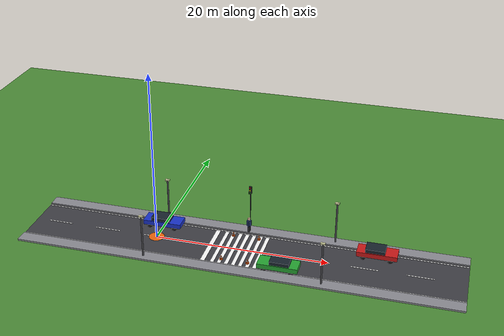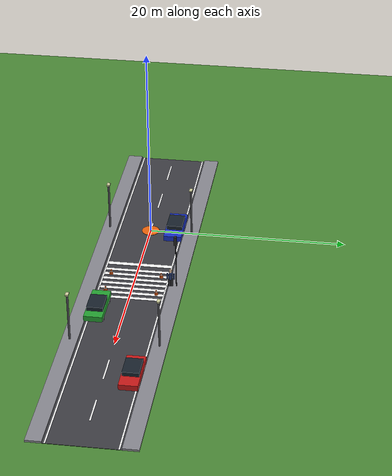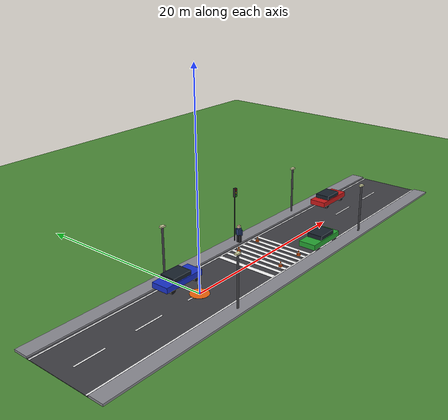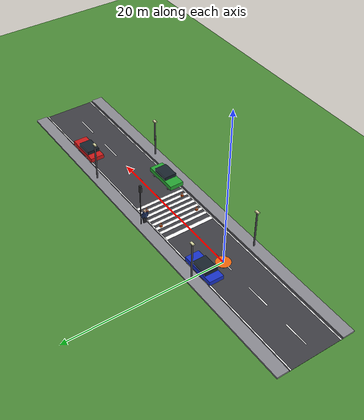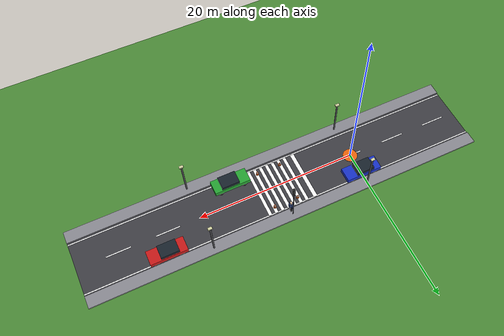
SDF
<sdf version="1.9">
 <world name="street">
  <physics name="default" type="ode">
   <max_step_size>0.004</max_step_size>
   <real_time_factor>1.0</real_time_factor>
   <real_time_update_rate>250</real_time_update_rate>
  </physics>
  <plugin name="gz::sim::systems::Physics" filename="gz-sim-physics-system"/>
  <plugin name="gz::sim::systems::UserCommands" filename="gz-sim-user-commands-system"/>
  <plugin name="gz::sim::systems::SceneBroadcaster" filename="gz-sim-scene-broadcaster-system"/>
  <plugin name="gz::sim::systems::Contact" filename="gz-sim-contact-system"/>
  <plugin name="gz::sim::systems::Sensors" filename="gz-sim-sensors-system"/>
  <plugin name="gz::sim::systems::Imu" filename="gz-sim-imu-system"/>
  <plugin name="gz::sim::systems::AirPressure" filename="gz-sim-air-pressure-system"/>
  <plugin name="gz::sim::systems::NavSat" filename="gz-sim-navsat-system"/>
  <plugin name="gz::sim::systems::Magnetometer" filename="gz-sim-magnetometer-system"/>
  <magnetic_field>6e-06 2.3e-05 -4.2e-05</magnetic_field>
  <scene>
   <ambient>0.55 0.55 0.6</ambient>
   <background>0.53 0.81 0.92</background>
   <shadows>false</shadows>
   <grid>false</grid>
  </scene>
  <light type="directional" name="sun">
   <cast_shadows>false</cast_shadows>
   <pose>0 0 10 0 0 0</pose>
   <direction>0.3 0.4 -1</direction>
   <diffuse>0.9 0.9 0.85 1</diffuse>
   <specular>0.2 0.2 0.2 1</specular>
  </light>
  <model name="ground_plane">
   <static>true</static>
   <link name="link">
    <collision name="collision">
     <geometry><plane><normal>0 0 1</normal><size>80 80</size></plane></geometry>
    </collision>
    <visual name="visual">
     <geometry><plane><normal>0 0 1</normal><size>80 80</size></plane></geometry>
     <material>
      <ambient>0.2 0.45 0.18 1</ambient>
      <diffuse>0.3 0.55 0.22 1</diffuse>
      <specular>0.05 0.05 0.05 1</specular>
     </material>
    </visual>
   </link>
  </model>
  <model name="road">
   <static>true</static>
   <pose>10 0 0.02 0 0 0</pose>
   <link name="link">
    <collision name="collision"><geometry><box><size>50 7 0.04</size></box></geometry></collision>
    <visual name="visual">
     <geometry><box><size>50 7 0.04</size></box></geometry>
     <material>
      <ambient>0.12 0.12 0.13 1</ambient>
      <diffuse>0.25 0.25 0.27 1</diffuse>
      <specular>0.05 0.05 0.05 1</specular>
     </material>
    </visual>
   </link>
  </model>
  <model name="sidewalk_right">
   <static>true</static>
   <pose>10 4.25 0.1 0 0 0</pose>
   <link name="link">
    <collision name="collision"><geometry><box><size>50 1.5 0.2</size></box></geometry></collision>
    <visual name="visual">
     <geometry><box><size>50 1.5 0.2</size></box></geometry>
     <material><ambient>0.35 0.35 0.37 1</ambient><diffuse>0.55 0.55 0.58 1</diffuse></material>
    </visual>
   </link>
  </model>
  <model name="sidewalk_left">
   <static>true</static>
   <pose>10 -4.25 0.1 0 0 0</pose>
   <link name="link">
    <collision name="collision"><geometry><box><size>50 1.5 0.2</size></box></geometry></collision>
    <visual name="visual">
     <geometry><box><size>50 1.5 0.2</size></box></geometry>
     <material><ambient>0.35 0.35 0.37 1</ambient><diffuse>0.55 0.55 0.58 1</diffuse></material>
    </visual>
   </link>
  </model>
  <model name="pad_start">
   <static>true</static>
   <pose>0 0 0.05 0 0 0</pose>
   <link name="link">
    <visual name="visual">
     <geometry><cylinder><radius>0.9</radius><length>0.02</length></cylinder></geometry>
     <material>
      <ambient>0.9 0.35 0.05 1</ambient>
      <diffuse>0.95 0.4 0.05 1</diffuse>
      <specular>0.2 0.2 0.2 1</specular>
     </material>
    </visual>
   </link>
  </model>
  <model name="road_markings">
   <static>true</static>
   <link name="link">
    <visual name="dash_m12">
     <pose>-12 0 0.043 0 0 0</pose>
     <geometry><box><size>3 0.15 0.005</size></box></geometry>
     <material><ambient>0.9 0.9 0.9 1</ambient><diffuse>1 1 1 1</diffuse></material>
    </visual>
    <visual name="dash_m6">
     <pose>-6 0 0.043 0 0 0</pose>
     <geometry><box><size>3 0.15 0.005</size></box></geometry>
     <material><ambient>0.9 0.9 0.9 1</ambient><diffuse>1 1 1 1</diffuse></material>
    </visual>
    <visual name="dash_0">
     <pose>0 0 0.043 0 0 0</pose>
     <geometry><box><size>3 0.15 0.005</size></box></geometry>
     <material><ambient>0.9 0.9 0.9 1</ambient><diffuse>1 1 1 1</diffuse></material>
    </visual>
    <visual name="dash_6">
     <pose>6 0 0.043 0 0 0</pose>
     <geometry><box><size>3 0.15 0.005</size></box></geometry>
     <material><ambient>0.9 0.9 0.9 1</ambient><diffuse>1 1 1 1</diffuse></material>
    </visual>
    <visual name="dash_12">
     <pose>12 0 0.043 0 0 0</pose>
     <geometry><box><size>3 0.15 0.005</size></box></geometry>
     <material><ambient>0.9 0.9 0.9 1</ambient><diffuse>1 1 1 1</diffuse></material>
    </visual>
    <visual name="dash_18">
     <pose>18 0 0.043 0 0 0</pose>
     <geometry><box><size>3 0.15 0.005</size></box></geometry>
     <material><ambient>0.9 0.9 0.9 1</ambient><diffuse>1 1 1 1</diffuse></material>
    </visual>
    <visual name="dash_24">
     <pose>24 0 0.043 0 0 0</pose>
     <geometry><box><size>3 0.15 0.005</size></box></geometry>
     <material><ambient>0.9 0.9 0.9 1</ambient><diffuse>1 1 1 1</diffuse></material>
    </visual>
    <visual name="dash_30">
     <pose>30 0 0.043 0 0 0</pose>
     <geometry><box><size>3 0.15 0.005</size></box></geometry>
     <material><ambient>0.9 0.9 0.9 1</ambient><diffuse>1 1 1 1</diffuse></material>
    </visual>
    <visual name="edge_right">
     <pose>10 3.25 0.043 0 0 0</pose>
     <geometry><box><size>50 0.15 0.005</size></box></geometry>
     <material><ambient>0.9 0.9 0.9 1</ambient><diffuse>1 1 1 1</diffuse></material>
    </visual>
    <visual name="edge_left">
     <pose>10 -3.25 0.043 0 0 0</pose>
     <geometry><box><size>50 0.15 0.005</size></box></geometry>
     <material><ambient>0.9 0.9 0.9 1</ambient><diffuse>1 1 1 1</diffuse></material>
    </visual>
    <visual name="zebra_1">
     <pose>7.6 0 0.043 0 0 0</pose>
     <geometry><box><size>0.4 6.5 0.005</size></box></geometry>
     <material><ambient>0.9 0.9 0.9 1</ambient><diffuse>1 1 1 1</diffuse></material>
    </visual>
    <visual name="zebra_2">
     <pose>8.4 0 0.043 0 0 0</pose>
     <geometry><box><size>0.4 6.5 0.005</size></box></geometry>
     <material><ambient>0.9 0.9 0.9 1</ambient><diffuse>1 1 1 1</diffuse></material>
    </visual>
    <visual name="zebra_3">
     <pose>9.2 0 0.043 0 0 0</pose>
     <geometry><box><size>0.4 6.5 0.005</size></box></geometry>
     <material><ambient>0.9 0.9 0.9 1</ambient><diffuse>1 1 1 1</diffuse></material>
    </visual>
    <visual name="zebra_4">
     <pose>10.0 0 0.043 0 0 0</pose>
     <geometry><box><size>0.4 6.5 0.005</size></box></geometry>
     <material><ambient>0.9 0.9 0.9 1</ambient><diffuse>1 1 1 1</diffuse></material>
    </visual>
    <visual name="zebra_5">
     <pose>10.8 0 0.043 0 0 0</pose>
     <geometry><box><size>0.4 6.5 0.005</size></box></geometry>
     <material><ambient>0.9 0.9 0.9 1</ambient><diffuse>1 1 1 1</diffuse></material>
    </visual>
    <visual name="zebra_6">
     <pose>11.6 0 0.043 0 0 0</pose>
     <geometry><box><size>0.4 6.5 0.005</size></box></geometry>
     <material><ambient>0.9 0.9 0.9 1</ambient><diffuse>1 1 1 1</diffuse></material>
    </visual>
    <visual name="zebra_7">
     <pose>12.4 0 0.043 0 0 0</pose>
     <geometry><box><size>0.4 6.5 0.005</size></box></geometry>
     <material><ambient>0.9 0.9 0.9 1</ambient><diffuse>1 1 1 1</diffuse></material>
    </visual>
    <visual name="stop_line">
     <pose>6.5 0 0.043 0 0 0</pose>
     <geometry><box><size>0.5 6.5 0.005</size></box></geometry>
     <material><ambient>0.9 0.9 0.9 1</ambient><diffuse>1 1 1 1</diffuse></material>
    </visual>
   </link>
  </model>
  <include><uri>model://street_light</uri><name>street_light_1</name><pose>0 4.25 0.2 0 0 0</pose></include>
  <include><uri>model://street_light</uri><name>street_light_2</name><pose>20 4.25 0.2 0 0 0</pose></include>
  <include><uri>model://street_light</uri><name>street_light_3</name><pose>0 -4.25 0.2 0 0 0</pose></include>
  <include><uri>model://street_light</uri><name>street_light_4</name><pose>20 -4.25 0.2 0 0 0</pose></include>
  <include><uri>model://traffic_light</uri><name>traffic_light</name><pose>10 4.25 0.2 0 0 0</pose></include>
  <include><uri>model://pedestrian</uri><name>pedestrian</name><pose>10 3.7 0.2 0 0 0</pose></include>
  <include><uri>model://car_blue</uri><name>car_parked_1</name><pose>0 2.6 0.04 0 0 0</pose></include>
  <include><uri>model://car_green</uri><name>car_parked_2</name><pose>15 -2.6 0.04 0 0 3.14159</pose></include>
  <include><uri>model://car_red</uri><name>car_parked_3</name><pose>25 2.6 0.04 0 0 0</pose></include>
  <include><uri>model://traffic_cone</uri><name>cone_1</name><pose>8.5 2.5 0.04 0 0 0</pose></include>
  <include><uri>model://traffic_cone</uri><name>cone_2</name><pose>11.5 2.5 0.04 0 0 0</pose></include>
  <include><uri>model://traffic_cone</uri><name>cone_3</name><pose>8.5 -2.5 0.04 0 0 0</pose></include>
  <include><uri>model://traffic_cone</uri><name>cone_4</name><pose>11.5 -2.5 0.04 0 0 0</pose></include>
  <spherical_coordinates>
   <surface_model>EARTH_WGS84</surface_model>
   <world_frame_orientation>ENU</world_frame_orientation>
   <latitude_deg>47.397971057728974</latitude_deg>
   <longitude_deg>8.546163739800146</longitude_deg>
   <elevation>0</elevation>
  </spherical_coordinates>
 </world>
</sdf>

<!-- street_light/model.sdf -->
<sdf version="1.9">
  <model name="street_light">
    <static>true</static>
    <link name="link">

      <!-- Столб: цилиндр 0 .. 5 м по Z -->
      <visual name="pole_visual">
        <pose>0 0 2.5 0 0 0</pose>
        <geometry>
          <cylinder>
            <radius>0.1</radius>
            <length>5.0</length>
          </cylinder>
        </geometry>
        <material>
          <ambient>0.15 0.15 0.16 1</ambient>
          <diffuse>0.28 0.28 0.30 1</diffuse>
        </material>
      </visual>
      <collision name="pole_collision">
        <pose>0 0 2.5 0 0 0</pose>
        <geometry>
          <cylinder>
            <radius>0.1</radius>
            <length>5.0</length>
          </cylinder>
        </geometry>
      </collision>

      <!-- Плафон наверху -->
      <visual name="head_visual">
        <pose>0 0 5.0 0 0 0</pose>
        <geometry>
          <box>
            <size>0.5 0.3 0.15</size>
          </box>
        </geometry>
        <material>
          <ambient>0.7 0.7 0.5 1</ambient>
          <diffuse>0.85 0.85 0.65 1</diffuse>
          <emissive>0.3 0.3 0.15 1</emissive>
        </material>
      </visual>

    </link>
  </model>
</sdf>

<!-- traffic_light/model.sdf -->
<sdf version="1.9">
  <model name="traffic_light">
    <static>true</static>
    <link name="link">

      <!-- Столб 0 .. 5 м -->
      <visual name="pole_visual">
        <pose>0 0 2.5 0 0 0</pose>
        <geometry><cylinder><radius>0.05</radius><length>5.0</length></cylinder></geometry>
        <material>
          <ambient>0.12 0.12 0.13 1</ambient>
          <diffuse>0.2 0.2 0.22 1</diffuse>
        </material>
      </visual>
      <collision name="pole_collision">
        <pose>0 0 2.5 0 0 0</pose>
        <geometry><cylinder><radius>0.05</radius><length>5.0</length></cylinder></geometry>
      </collision>

      <!-- Корпус -->
      <visual name="box_visual">
        <pose>0 -0.06 5.2 0 0 0</pose>
        <geometry><box><size>0.3 0.24 0.9</size></box></geometry>
        <material>
          <ambient>0.1 0.1 0.1 1</ambient>
          <diffuse>0.18 0.18 0.18 1</diffuse>
        </material>
      </visual>

      <!-- Лампы: тонкие диски (ось по Y, roll 90°), на передней грани (y=-0.19) -->
      <visual name="red_visual">
        <pose>0 -0.19 5.5 1.5708 0 0</pose>
        <geometry><cylinder><radius>0.09</radius><length>0.02</length></cylinder></geometry>
        <material>
          <ambient>0.9 0.05 0.05 1</ambient>
          <diffuse>1 0 0 1</diffuse>
          <emissive>0.9 0.05 0.05 1</emissive>
        </material>
      </visual>
      <visual name="yellow_visual">
        <pose>0 -0.19 5.2 1.5708 0 0</pose>
        <geometry><cylinder><radius>0.09</radius><length>0.02</length></cylinder></geometry>
        <material>
          <ambient>0.9 0.8 0.05 1</ambient>
          <diffuse>1 0.9 0 1</diffuse>
          <emissive>0.9 0.8 0.05 1</emissive>
        </material>
      </visual>
      <visual name="green_visual">
        <pose>0 -0.19 4.9 1.5708 0 0</pose>
        <geometry><cylinder><radius>0.09</radius><length>0.02</length></cylinder></geometry>
        <material>
          <ambient>0.05 0.9 0.05 1</ambient>
          <diffuse>0 1 0 1</diffuse>
          <emissive>0.05 0.9 0.05 1</emissive>
        </material>
      </visual>

    </link>
  </model>
</sdf>

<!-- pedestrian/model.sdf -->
<sdf version="1.9">
  <model name="pedestrian">
    <static>true</static>
    <link name="link">

      <!-- Ноги -->
      <visual name="leg_left_visual">
        <pose>0 0.12 0.4 0 0 0</pose>
        <geometry><box><size>0.22 0.22 0.8</size></box></geometry>
        <material>
          <ambient>0.10 0.10 0.12 1</ambient>
          <diffuse>0.18 0.18 0.20 1</diffuse>
        </material>
      </visual>
      <visual name="leg_right_visual">
        <pose>0 -0.12 0.4 0 0 0</pose>
        <geometry><box><size>0.22 0.22 0.8</size></box></geometry>
        <material>
          <ambient>0.10 0.10 0.12 1</ambient>
          <diffuse>0.18 0.18 0.20 1</diffuse>
        </material>
      </visual>

      <!-- Туловище -->
      <visual name="torso_visual">
        <pose>0 0 1.15 0 0 0</pose>
        <geometry><box><size>0.5 0.28 0.65</size></box></geometry>
        <material>
          <ambient>0.08 0.12 0.25 1</ambient>
          <diffuse>0.16 0.24 0.45 1</diffuse>
        </material>
      </visual>

      <!-- Руки -->
      <visual name="arm_left_visual">
        <pose>0 0.32 1.1 0 0 0</pose>
        <geometry><box><size>0.14 0.14 0.6</size></box></geometry>
        <material>
          <ambient>0.08 0.12 0.25 1</ambient>
          <diffuse>0.16 0.24 0.45 1</diffuse>
        </material>
      </visual>
      <visual name="arm_right_visual">
        <pose>0 -0.32 1.1 0 0 0</pose>
        <geometry><box><size>0.14 0.14 0.6</size></box></geometry>
        <material>
          <ambient>0.08 0.12 0.25 1</ambient>
          <diffuse>0.16 0.24 0.45 1</diffuse>
        </material>
      </visual>

      <!-- Голова (телесный цвет) -->
      <visual name="head_visual">
        <pose>0 0 1.68 0 0 0</pose>
        <geometry><box><size>0.24 0.24 0.26</size></box></geometry>
        <material>
          <ambient>0.85 0.70 0.58 1</ambient>
          <diffuse>0.95 0.80 0.66 1</diffuse>
        </material>
      </visual>

      <!-- Общий collision (для depth-камеры target_localizer) -->
      <collision name="collision">
        <pose>0 0 0.9 0 0 0</pose>
        <geometry><box><size>0.6 0.8 1.8</size></box></geometry>
      </collision>

    </link>
  </model>
</sdf>

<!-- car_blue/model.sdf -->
<!-- Синий седан — цель для YOLO (класс car). -->
<sdf version="1.9">
  <model name="car_blue">
    <static>true</static>
    <link name="link">

      <!-- Нижний кузов (синий) -->
      <visual name="body_visual">
        <pose>0 0 0.6 0 0 0</pose>
        <geometry><box><size>4.5 1.8 0.55</size></box></geometry>
        <material>
          <ambient>0.05 0.05 0.5 1</ambient>
          <diffuse>0.1 0.2 0.8 1</diffuse>
        </material>
      </visual>

      <!-- Кабина (тёмное «стекло») -->
      <visual name="cabin_visual">
        <pose>-0.2 0 1.05 0 0 0</pose>
        <geometry><box><size>2.2 1.6 0.5</size></box></geometry>
        <material>
          <ambient>0.06 0.08 0.10 1</ambient>
          <diffuse>0.10 0.14 0.18 1</diffuse>
        </material>
      </visual>

      <!-- 4 колеса -->
      <visual name="wheel_fl_visual">
        <pose>1.5 0.78 0.32 1.5708 0 0</pose>
        <geometry><cylinder><radius>0.32</radius><length>0.22</length></cylinder></geometry>
        <material>
          <ambient>0.05 0.05 0.05 1</ambient>
          <diffuse>0.1 0.1 0.1 1</diffuse>
        </material>
      </visual>
      <visual name="wheel_fr_visual">
        <pose>1.5 -0.78 0.32 1.5708 0 0</pose>
        <geometry><cylinder><radius>0.32</radius><length>0.22</length></cylinder></geometry>
        <material>
          <ambient>0.05 0.05 0.05 1</ambient>
          <diffuse>0.1 0.1 0.1 1</diffuse>
        </material>
      </visual>
      <visual name="wheel_rl_visual">
        <pose>-1.5 0.78 0.32 1.5708 0 0</pose>
        <geometry><cylinder><radius>0.32</radius><length>0.22</length></cylinder></geometry>
        <material>
          <ambient>0.05 0.05 0.05 1</ambient>
          <diffuse>0.1 0.1 0.1 1</diffuse>
        </material>
      </visual>
      <visual name="wheel_rr_visual">
        <pose>-1.5 -0.78 0.32 1.5708 0 0</pose>
        <geometry><cylinder><radius>0.32</radius><length>0.22</length></cylinder></geometry>
        <material>
          <ambient>0.05 0.05 0.05 1</ambient>
          <diffuse>0.1 0.1 0.1 1</diffuse>
        </material>
      </visual>

      <collision name="collision">
        <pose>0 0 0.5 0 0 0</pose>
        <geometry><box><size>4.5 1.8 1.0</size></box></geometry>
      </collision>

    </link>
  </model>
</sdf>

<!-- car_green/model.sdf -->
<!-- Зелёный седан — цель для YOLO (класс car). -->
<sdf version="1.9">
  <model name="car_green">
    <static>true</static>
    <link name="link">

      <!-- Нижний кузов (зелёный) -->
      <visual name="body_visual">
        <pose>0 0 0.6 0 0 0</pose>
        <geometry><box><size>4.5 1.8 0.55</size></box></geometry>
        <material>
          <ambient>0.05 0.4 0.08 1</ambient>
          <diffuse>0.15 0.65 0.2 1</diffuse>
        </material>
      </visual>

      <!-- Кабина (тёмное «стекло») -->
      <visual name="cabin_visual">
        <pose>-0.2 0 1.05 0 0 0</pose>
        <geometry><box><size>2.2 1.6 0.5</size></box></geometry>
        <material>
          <ambient>0.06 0.08 0.10 1</ambient>
          <diffuse>0.10 0.14 0.18 1</diffuse>
        </material>
      </visual>

      <!-- 4 колеса -->
      <visual name="wheel_fl_visual">
        <pose>1.5 0.78 0.32 1.5708 0 0</pose>
        <geometry><cylinder><radius>0.32</radius><length>0.22</length></cylinder></geometry>
        <material>
          <ambient>0.05 0.05 0.05 1</ambient>
          <diffuse>0.1 0.1 0.1 1</diffuse>
        </material>
      </visual>
      <visual name="wheel_fr_visual">
        <pose>1.5 -0.78 0.32 1.5708 0 0</pose>
        <geometry><cylinder><radius>0.32</radius><length>0.22</length></cylinder></geometry>
        <material>
          <ambient>0.05 0.05 0.05 1</ambient>
          <diffuse>0.1 0.1 0.1 1</diffuse>
        </material>
      </visual>
      <visual name="wheel_rl_visual">
        <pose>-1.5 0.78 0.32 1.5708 0 0</pose>
        <geometry><cylinder><radius>0.32</radius><length>0.22</length></cylinder></geometry>
        <material>
          <ambient>0.05 0.05 0.05 1</ambient>
          <diffuse>0.1 0.1 0.1 1</diffuse>
        </material>
      </visual>
      <visual name="wheel_rr_visual">
        <pose>-1.5 -0.78 0.32 1.5708 0 0</pose>
        <geometry><cylinder><radius>0.32</radius><length>0.22</length></cylinder></geometry>
        <material>
          <ambient>0.05 0.05 0.05 1</ambient>
          <diffuse>0.1 0.1 0.1 1</diffuse>
        </material>
      </visual>

      <collision name="collision">
        <pose>0 0 0.5 0 0 0</pose>
        <geometry><box><size>4.5 1.8 1.0</size></box></geometry>
      </collision>

    </link>
  </model>
</sdf>

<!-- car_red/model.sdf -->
<!-- Красный седан — цель для YOLO (класс car). -->
<sdf version="1.9">
  <model name="car_red">
    <static>true</static>
    <link name="link">

      <!-- Нижний кузов (красный) -->
      <visual name="body_visual">
        <pose>0 0 0.6 0 0 0</pose>
        <geometry><box><size>4.5 1.8 0.55</size></box></geometry>
        <material>
          <ambient>0.5 0.05 0.05 1</ambient>
          <diffuse>0.8 0.1 0.1 1</diffuse>
        </material>
      </visual>

      <!-- Кабина (тёмное «стекло») -->
      <visual name="cabin_visual">
        <pose>-0.2 0 1.05 0 0 0</pose>
        <geometry><box><size>2.2 1.6 0.5</size></box></geometry>
        <material>
          <ambient>0.06 0.08 0.10 1</ambient>
          <diffuse>0.10 0.14 0.18 1</diffuse>
        </material>
      </visual>

      <!-- 4 колеса -->
      <visual name="wheel_fl_visual">
        <pose>1.5 0.78 0.32 1.5708 0 0</pose>
        <geometry><cylinder><radius>0.32</radius><length>0.22</length></cylinder></geometry>
        <material>
          <ambient>0.05 0.05 0.05 1</ambient>
          <diffuse>0.1 0.1 0.1 1</diffuse>
        </material>
      </visual>
      <visual name="wheel_fr_visual">
        <pose>1.5 -0.78 0.32 1.5708 0 0</pose>
        <geometry><cylinder><radius>0.32</radius><length>0.22</length></cylinder></geometry>
        <material>
          <ambient>0.05 0.05 0.05 1</ambient>
          <diffuse>0.1 0.1 0.1 1</diffuse>
        </material>
      </visual>
      <visual name="wheel_rl_visual">
        <pose>-1.5 0.78 0.32 1.5708 0 0</pose>
        <geometry><cylinder><radius>0.32</radius><length>0.22</length></cylinder></geometry>
        <material>
          <ambient>0.05 0.05 0.05 1</ambient>
          <diffuse>0.1 0.1 0.1 1</diffuse>
        </material>
      </visual>
      <visual name="wheel_rr_visual">
        <pose>-1.5 -0.78 0.32 1.5708 0 0</pose>
        <geometry><cylinder><radius>0.32</radius><length>0.22</length></cylinder></geometry>
        <material>
          <ambient>0.05 0.05 0.05 1</ambient>
          <diffuse>0.1 0.1 0.1 1</diffuse>
        </material>
      </visual>

      <collision name="collision">
        <pose>0 0 0.5 0 0 0</pose>
        <geometry><box><size>4.5 1.8 1.0</size></box></geometry>
      </collision>

    </link>
  </model>
</sdf>

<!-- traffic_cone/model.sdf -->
<!-- Дорожный конус (~0.5 м): аппроксимация конуса стопкой цилиндров убывающего
     радиуса + белая полоса. Низкий объект — визуальная цель, в /scan не попадает. -->
<sdf version="1.9">
  <model name="traffic_cone">
    <static>true</static>
    <link name="link">

      <visual name="base_visual">
        <pose>0 0 0.075 0 0 0</pose>
        <geometry><cylinder><radius>0.18</radius><length>0.15</length></cylinder></geometry>
        <material>
          <ambient>0.7 0.25 0.05 1</ambient>
          <diffuse>1 0.4 0.1 1</diffuse>
        </material>
      </visual>

      <visual name="mid_visual">
        <pose>0 0 0.225 0 0 0</pose>
        <geometry><cylinder><radius>0.12</radius><length>0.15</length></cylinder></geometry>
        <material>
          <ambient>0.7 0.25 0.05 1</ambient>
          <diffuse>1 0.4 0.1 1</diffuse>
        </material>
      </visual>

      <visual name="top_visual">
        <pose>0 0 0.4 0 0 0</pose>
        <geometry><cylinder><radius>0.06</radius><length>0.2</length></cylinder></geometry>
        <material>
          <ambient>0.7 0.25 0.05 1</ambient>
          <diffuse>1 0.4 0.1 1</diffuse>
        </material>
      </visual>

      <!-- Белая отражающая полоса -->
      <visual name="band_visual">
        <pose>0 0 0.3 0 0 0</pose>
        <geometry><cylinder><radius>0.125</radius><length>0.03</length></cylinder></geometry>
        <material>
          <ambient>0.8 0.8 0.8 1</ambient>
          <diffuse>0.95 0.95 0.95 1</diffuse>
        </material>
      </visual>

      <collision name="collision">
        <pose>0 0 0.25 0 0 0</pose>
        <geometry><cylinder><radius>0.18</radius><length>0.5</length></cylinder></geometry>
      </collision>

    </link>
  </model>
</sdf>
